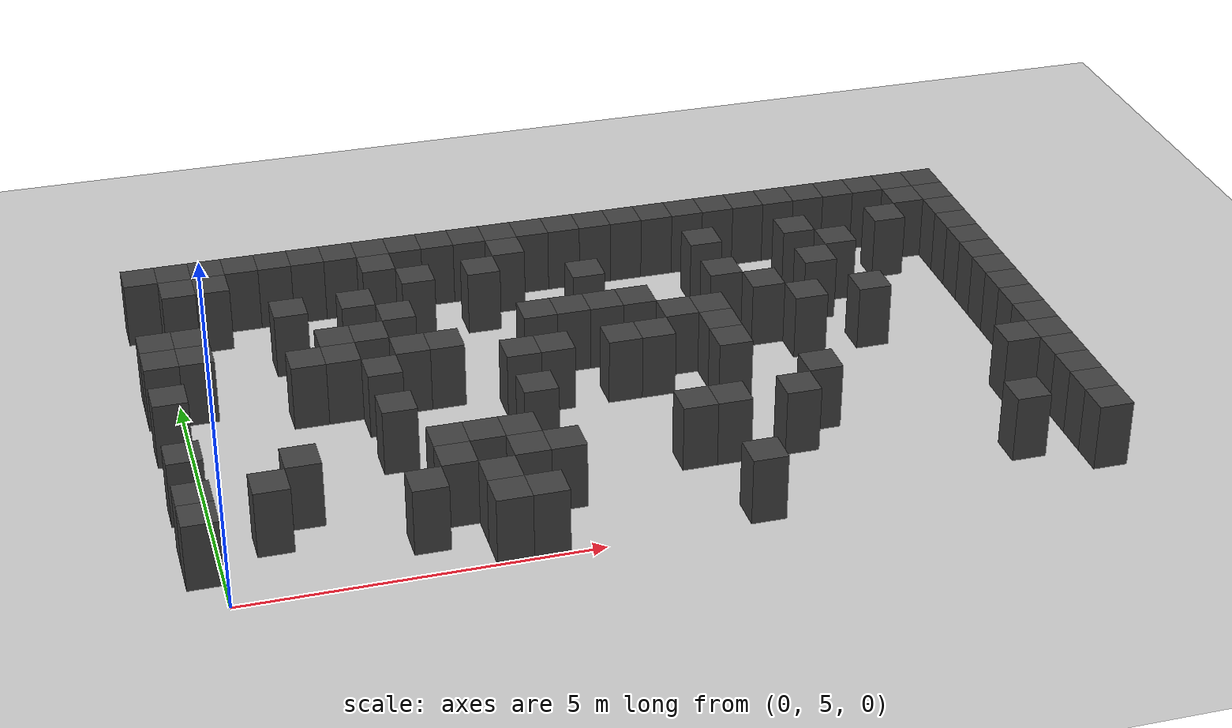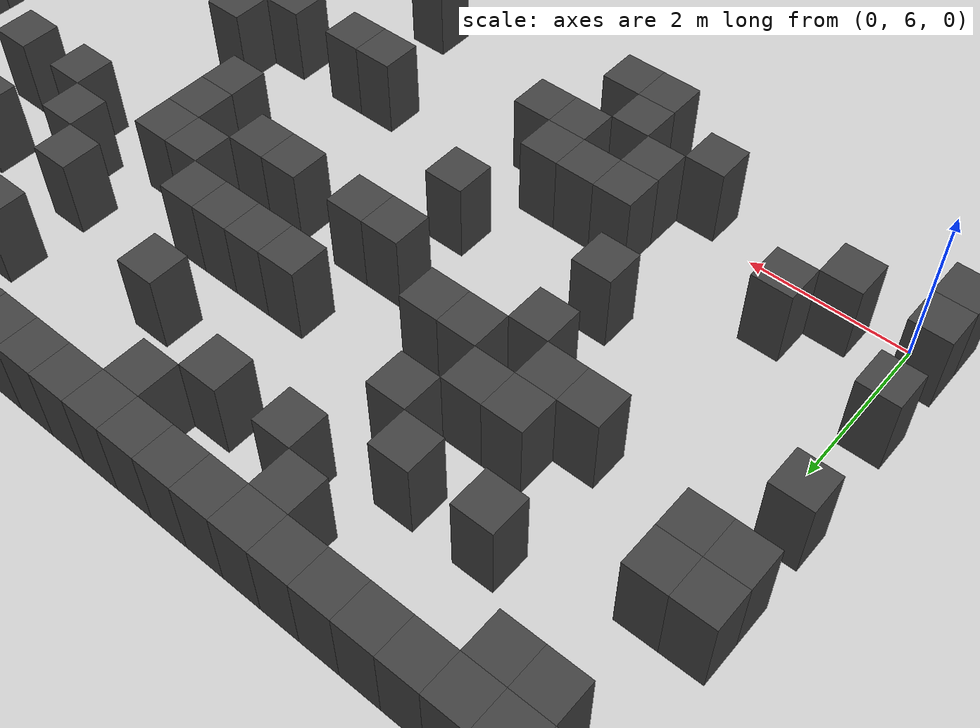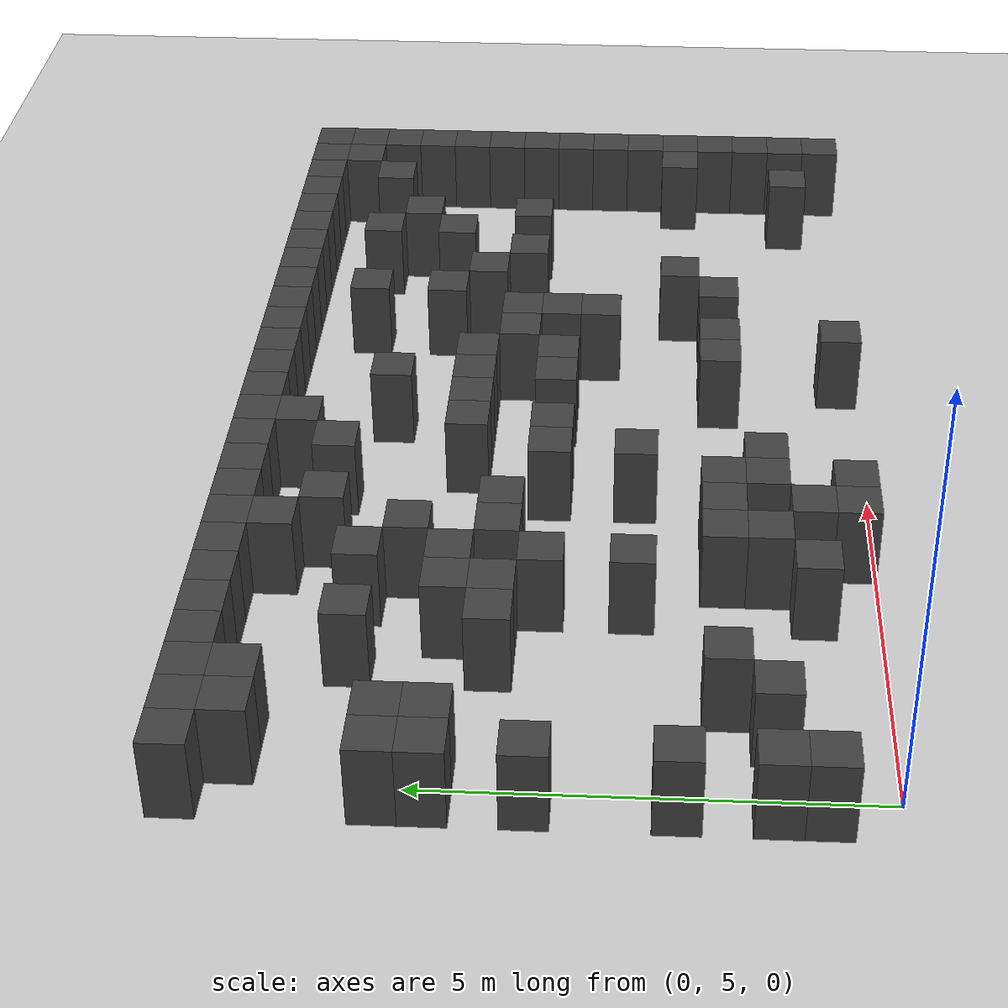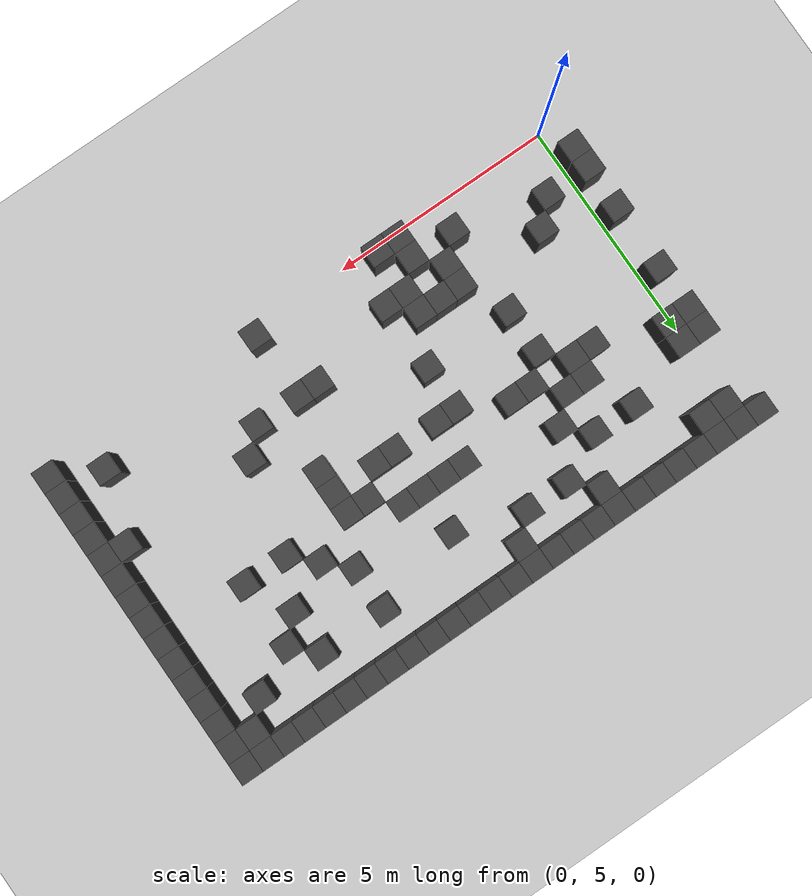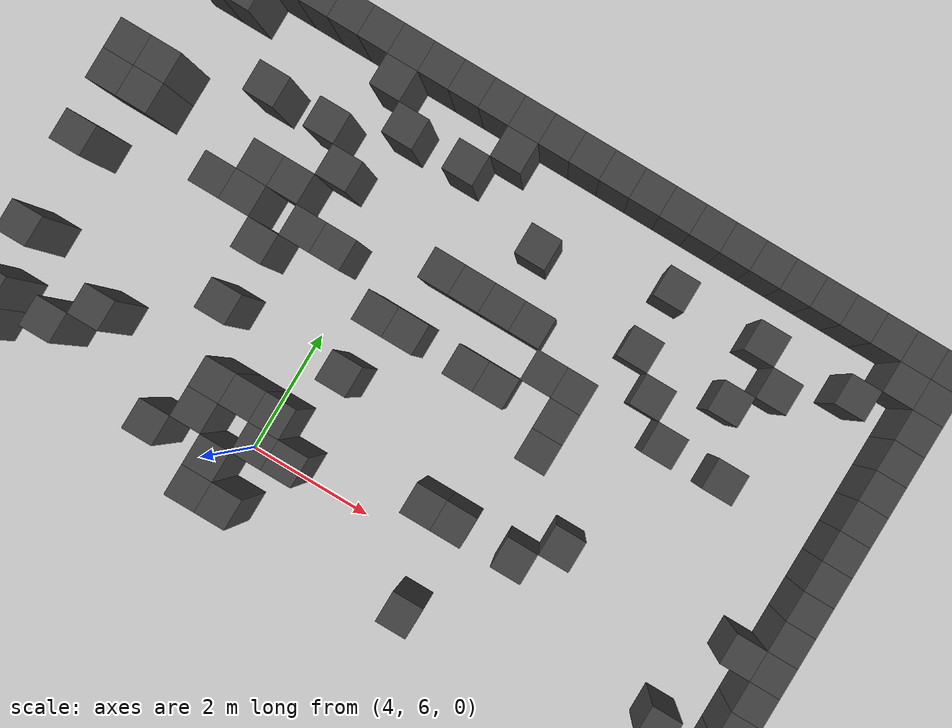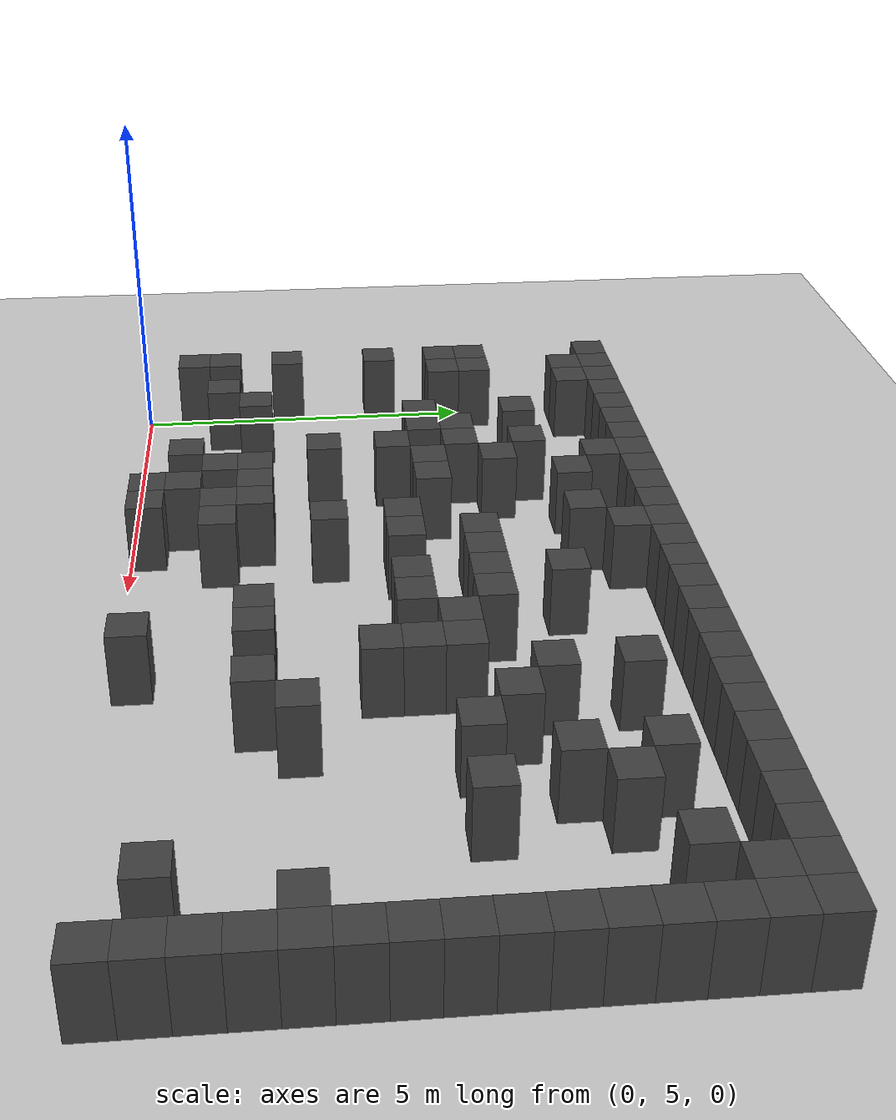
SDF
<sdf version="1.7">
 <world name="map_3955">
  <model name="ground_plane">
   <static>true</static>
   <link name="link">
    <collision name="collision">
     <geometry><plane><normal>0 0 1</normal><size>200 200</size></plane></geometry>
    </collision>
    <visual name="visual">
     <geometry><plane><normal>0 0 1</normal><size>200 200</size></plane></geometry>
     <material><ambient>0.8 0.8 0.8 1</ambient><diffuse>0.8 0.8 0.8 1</diffuse></material>
    </visual>
   </link>
  </model>
  <model name="maze_environment">
   <static>true</static>
   <link name="wall_24">
    <pose>-0.250 12.250 0.500 0 0 0</pose>
    <collision name="col"><geometry><box><size>0.5 0.5 1.0</size></box></geometry></collision>
    <visual name="vis">
     <geometry><box><size>0.5 0.5 1.0</size></box></geometry>
     <material><ambient>0.15 0.15 0.15 1</ambient><diffuse>0.25 0.25 0.25 1</diffuse></material>
    </visual>
   </link>
   <link name="wall_25">
    <pose>0.250 12.250 0.500 0 0 0</pose>
    <collision name="col"><geometry><box><size>0.5 0.5 1.0</size></box></geometry></collision>
    <visual name="vis">
     <geometry><box><size>0.5 0.5 1.0</size></box></geometry>
     <material><ambient>0.15 0.15 0.15 1</ambient><diffuse>0.25 0.25 0.25 1</diffuse></material>
    </visual>
   </link>
   <link name="wall_26">
    <pose>0.750 12.250 0.500 0 0 0</pose>
    <collision name="col"><geometry><box><size>0.5 0.5 1.0</size></box></geometry></collision>
    <visual name="vis">
     <geometry><box><size>0.5 0.5 1.0</size></box></geometry>
     <material><ambient>0.15 0.15 0.15 1</ambient><diffuse>0.25 0.25 0.25 1</diffuse></material>
    </visual>
   </link>
   <link name="wall_27">
    <pose>1.250 12.250 0.500 0 0 0</pose>
    <collision name="col"><geometry><box><size>0.5 0.5 1.0</size></box></geometry></collision>
    <visual name="vis">
     <geometry><box><size>0.5 0.5 1.0</size></box></geometry>
     <material><ambient>0.15 0.15 0.15 1</ambient><diffuse>0.25 0.25 0.25 1</diffuse></material>
    </visual>
   </link>
   <link name="wall_28">
    <pose>1.750 12.250 0.500 0 0 0</pose>
    <collision name="col"><geometry><box><size>0.5 0.5 1.0</size></box></geometry></collision>
    <visual name="vis">
     <geometry><box><size>0.5 0.5 1.0</size></box></geometry>
     <material><ambient>0.15 0.15 0.15 1</ambient><diffuse>0.25 0.25 0.25 1</diffuse></material>
    </visual>
   </link>
   <link name="wall_29">
    <pose>2.250 12.250 0.500 0 0 0</pose>
    <collision name="col"><geometry><box><size>0.5 0.5 1.0</size></box></geometry></collision>
    <visual name="vis">
     <geometry><box><size>0.5 0.5 1.0</size></box></geometry>
     <material><ambient>0.15 0.15 0.15 1</ambient><diffuse>0.25 0.25 0.25 1</diffuse></material>
    </visual>
   </link>
   <link name="wall_30">
    <pose>2.750 12.250 0.500 0 0 0</pose>
    <collision name="col"><geometry><box><size>0.5 0.5 1.0</size></box></geometry></collision>
    <visual name="vis">
     <geometry><box><size>0.5 0.5 1.0</size></box></geometry>
     <material><ambient>0.15 0.15 0.15 1</ambient><diffuse>0.25 0.25 0.25 1</diffuse></material>
    </visual>
   </link>
   <link name="wall_31">
    <pose>3.250 12.250 0.500 0 0 0</pose>
    <collision name="col"><geometry><box><size>0.5 0.5 1.0</size></box></geometry></collision>
    <visual name="vis">
     <geometry><box><size>0.5 0.5 1.0</size></box></geometry>
     <material><ambient>0.15 0.15 0.15 1</ambient><diffuse>0.25 0.25 0.25 1</diffuse></material>
    </visual>
   </link>
   <link name="wall_32">
    <pose>3.750 12.250 0.500 0 0 0</pose>
    <collision name="col"><geometry><box><size>0.5 0.5 1.0</size></box></geometry></collision>
    <visual name="vis">
     <geometry><box><size>0.5 0.5 1.0</size></box></geometry>
     <material><ambient>0.15 0.15 0.15 1</ambient><diffuse>0.25 0.25 0.25 1</diffuse></material>
    </visual>
   </link>
   <link name="wall_33">
    <pose>4.250 12.250 0.500 0 0 0</pose>
    <collision name="col"><geometry><box><size>0.5 0.5 1.0</size></box></geometry></collision>
    <visual name="vis">
     <geometry><box><size>0.5 0.5 1.0</size></box></geometry>
     <material><ambient>0.15 0.15 0.15 1</ambient><diffuse>0.25 0.25 0.25 1</diffuse></material>
    </visual>
   </link>
   <link name="wall_34">
    <pose>4.750 12.250 0.500 0 0 0</pose>
    <collision name="col"><geometry><box><size>0.5 0.5 1.0</size></box></geometry></collision>
    <visual name="vis">
     <geometry><box><size>0.5 0.5 1.0</size></box></geometry>
     <material><ambient>0.15 0.15 0.15 1</ambient><diffuse>0.25 0.25 0.25 1</diffuse></material>
    </visual>
   </link>
   <link name="wall_35">
    <pose>5.250 12.250 0.500 0 0 0</pose>
    <collision name="col"><geometry><box><size>0.5 0.5 1.0</size></box></geometry></collision>
    <visual name="vis">
     <geometry><box><size>0.5 0.5 1.0</size></box></geometry>
     <material><ambient>0.15 0.15 0.15 1</ambient><diffuse>0.25 0.25 0.25 1</diffuse></material>
    </visual>
   </link>
   <link name="wall_36">
    <pose>5.750 12.250 0.500 0 0 0</pose>
    <collision name="col"><geometry><box><size>0.5 0.5 1.0</size></box></geometry></collision>
    <visual name="vis">
     <geometry><box><size>0.5 0.5 1.0</size></box></geometry>
     <material><ambient>0.15 0.15 0.15 1</ambient><diffuse>0.25 0.25 0.25 1</diffuse></material>
    </visual>
   </link>
   <link name="wall_37">
    <pose>6.250 12.250 0.500 0 0 0</pose>
    <collision name="col"><geometry><box><size>0.5 0.5 1.0</size></box></geometry></collision>
    <visual name="vis">
     <geometry><box><size>0.5 0.5 1.0</size></box></geometry>
     <material><ambient>0.15 0.15 0.15 1</ambient><diffuse>0.25 0.25 0.25 1</diffuse></material>
    </visual>
   </link>
   <link name="wall_38">
    <pose>6.750 12.250 0.500 0 0 0</pose>
    <collision name="col"><geometry><box><size>0.5 0.5 1.0</size></box></geometry></collision>
    <visual name="vis">
     <geometry><box><size>0.5 0.5 1.0</size></box></geometry>
     <material><ambient>0.15 0.15 0.15 1</ambient><diffuse>0.25 0.25 0.25 1</diffuse></material>
    </visual>
   </link>
   <link name="wall_39">
    <pose>7.250 12.250 0.500 0 0 0</pose>
    <collision name="col"><geometry><box><size>0.5 0.5 1.0</size></box></geometry></collision>
    <visual name="vis">
     <geometry><box><size>0.5 0.5 1.0</size></box></geometry>
     <material><ambient>0.15 0.15 0.15 1</ambient><diffuse>0.25 0.25 0.25 1</diffuse></material>
    </visual>
   </link>
   <link name="wall_40">
    <pose>7.750 12.250 0.500 0 0 0</pose>
    <collision name="col"><geometry><box><size>0.5 0.5 1.0</size></box></geometry></collision>
    <visual name="vis">
     <geometry><box><size>0.5 0.5 1.0</size></box></geometry>
     <material><ambient>0.15 0.15 0.15 1</ambient><diffuse>0.25 0.25 0.25 1</diffuse></material>
    </visual>
   </link>
   <link name="wall_41">
    <pose>8.250 12.250 0.500 0 0 0</pose>
    <collision name="col"><geometry><box><size>0.5 0.5 1.0</size></box></geometry></collision>
    <visual name="vis">
     <geometry><box><size>0.5 0.5 1.0</size></box></geometry>
     <material><ambient>0.15 0.15 0.15 1</ambient><diffuse>0.25 0.25 0.25 1</diffuse></material>
    </visual>
   </link>
   <link name="wall_42">
    <pose>8.750 12.250 0.500 0 0 0</pose>
    <collision name="col"><geometry><box><size>0.5 0.5 1.0</size></box></geometry></collision>
    <visual name="vis">
     <geometry><box><size>0.5 0.5 1.0</size></box></geometry>
     <material><ambient>0.15 0.15 0.15 1</ambient><diffuse>0.25 0.25 0.25 1</diffuse></material>
    </visual>
   </link>
   <link name="wall_43">
    <pose>9.250 12.250 0.500 0 0 0</pose>
    <collision name="col"><geometry><box><size>0.5 0.5 1.0</size></box></geometry></collision>
    <visual name="vis">
     <geometry><box><size>0.5 0.5 1.0</size></box></geometry>
     <material><ambient>0.15 0.15 0.15 1</ambient><diffuse>0.25 0.25 0.25 1</diffuse></material>
    </visual>
   </link>
   <link name="wall_44">
    <pose>9.750 12.250 0.500 0 0 0</pose>
    <collision name="col"><geometry><box><size>0.5 0.5 1.0</size></box></geometry></collision>
    <visual name="vis">
     <geometry><box><size>0.5 0.5 1.0</size></box></geometry>
     <material><ambient>0.15 0.15 0.15 1</ambient><diffuse>0.25 0.25 0.25 1</diffuse></material>
    </visual>
   </link>
   <link name="wall_45">
    <pose>10.250 12.250 0.500 0 0 0</pose>
    <collision name="col"><geometry><box><size>0.5 0.5 1.0</size></box></geometry></collision>
    <visual name="vis">
     <geometry><box><size>0.5 0.5 1.0</size></box></geometry>
     <material><ambient>0.15 0.15 0.15 1</ambient><diffuse>0.25 0.25 0.25 1</diffuse></material>
    </visual>
   </link>
   <link name="wall_46">
    <pose>10.750 12.250 0.500 0 0 0</pose>
    <collision name="col"><geometry><box><size>0.5 0.5 1.0</size></box></geometry></collision>
    <visual name="vis">
     <geometry><box><size>0.5 0.5 1.0</size></box></geometry>
     <material><ambient>0.15 0.15 0.15 1</ambient><diffuse>0.25 0.25 0.25 1</diffuse></material>
    </visual>
   </link>
   <link name="wall_47">
    <pose>11.250 12.250 0.500 0 0 0</pose>
    <collision name="col"><geometry><box><size>0.5 0.5 1.0</size></box></geometry></collision>
    <visual name="vis">
     <geometry><box><size>0.5 0.5 1.0</size></box></geometry>
     <material><ambient>0.15 0.15 0.15 1</ambient><diffuse>0.25 0.25 0.25 1</diffuse></material>
    </visual>
   </link>
   <link name="wall_48">
    <pose>11.750 12.250 0.500 0 0 0</pose>
    <collision name="col"><geometry><box><size>0.5 0.5 1.0</size></box></geometry></collision>
    <visual name="vis">
     <geometry><box><size>0.5 0.5 1.0</size></box></geometry>
     <material><ambient>0.15 0.15 0.15 1</ambient><diffuse>0.25 0.25 0.25 1</diffuse></material>
    </visual>
   </link>
   <link name="wall_49">
    <pose>12.250 12.250 0.500 0 0 0</pose>
    <collision name="col"><geometry><box><size>0.5 0.5 1.0</size></box></geometry></collision>
    <visual name="vis">
     <geometry><box><size>0.5 0.5 1.0</size></box></geometry>
     <material><ambient>0.15 0.15 0.15 1</ambient><diffuse>0.25 0.25 0.25 1</diffuse></material>
    </visual>
   </link>
   <link name="wall_52">
    <pose>0.250 11.750 0.500 0 0 0</pose>
    <collision name="col"><geometry><box><size>0.5 0.5 1.0</size></box></geometry></collision>
    <visual name="vis">
     <geometry><box><size>0.5 0.5 1.0</size></box></geometry>
     <material><ambient>0.15 0.15 0.15 1</ambient><diffuse>0.25 0.25 0.25 1</diffuse></material>
    </visual>
   </link>
   <link name="wall_53">
    <pose>0.750 11.750 0.500 0 0 0</pose>
    <collision name="col"><geometry><box><size>0.5 0.5 1.0</size></box></geometry></collision>
    <visual name="vis">
     <geometry><box><size>0.5 0.5 1.0</size></box></geometry>
     <material><ambient>0.15 0.15 0.15 1</ambient><diffuse>0.25 0.25 0.25 1</diffuse></material>
    </visual>
   </link>
   <link name="wall_54">
    <pose>3.250 11.750 0.500 0 0 0</pose>
    <collision name="col"><geometry><box><size>0.5 0.5 1.0</size></box></geometry></collision>
    <visual name="vis">
     <geometry><box><size>0.5 0.5 1.0</size></box></geometry>
     <material><ambient>0.15 0.15 0.15 1</ambient><diffuse>0.25 0.25 0.25 1</diffuse></material>
    </visual>
   </link>
   <link name="wall_55">
    <pose>5.250 11.750 0.500 0 0 0</pose>
    <collision name="col"><geometry><box><size>0.5 0.5 1.0</size></box></geometry></collision>
    <visual name="vis">
     <geometry><box><size>0.5 0.5 1.0</size></box></geometry>
     <material><ambient>0.15 0.15 0.15 1</ambient><diffuse>0.25 0.25 0.25 1</diffuse></material>
    </visual>
   </link>
   <link name="wall_56">
    <pose>11.750 11.750 0.500 0 0 0</pose>
    <collision name="col"><geometry><box><size>0.5 0.5 1.0</size></box></geometry></collision>
    <visual name="vis">
     <geometry><box><size>0.5 0.5 1.0</size></box></geometry>
     <material><ambient>0.15 0.15 0.15 1</ambient><diffuse>0.25 0.25 0.25 1</diffuse></material>
    </visual>
   </link>
   <link name="wall_57">
    <pose>12.250 11.750 0.500 0 0 0</pose>
    <collision name="col"><geometry><box><size>0.5 0.5 1.0</size></box></geometry></collision>
    <visual name="vis">
     <geometry><box><size>0.5 0.5 1.0</size></box></geometry>
     <material><ambient>0.15 0.15 0.15 1</ambient><diffuse>0.25 0.25 0.25 1</diffuse></material>
    </visual>
   </link>
   <link name="wall_63">
    <pose>3.750 11.250 0.500 0 0 0</pose>
    <collision name="col"><geometry><box><size>0.5 0.5 1.0</size></box></geometry></collision>
    <visual name="vis">
     <geometry><box><size>0.5 0.5 1.0</size></box></geometry>
     <material><ambient>0.15 0.15 0.15 1</ambient><diffuse>0.25 0.25 0.25 1</diffuse></material>
    </visual>
   </link>
   <link name="wall_64">
    <pose>4.750 11.250 0.500 0 0 0</pose>
    <collision name="col"><geometry><box><size>0.5 0.5 1.0</size></box></geometry></collision>
    <visual name="vis">
     <geometry><box><size>0.5 0.5 1.0</size></box></geometry>
     <material><ambient>0.15 0.15 0.15 1</ambient><diffuse>0.25 0.25 0.25 1</diffuse></material>
    </visual>
   </link>
   <link name="wall_65">
    <pose>8.250 11.250 0.500 0 0 0</pose>
    <collision name="col"><geometry><box><size>0.5 0.5 1.0</size></box></geometry></collision>
    <visual name="vis">
     <geometry><box><size>0.5 0.5 1.0</size></box></geometry>
     <material><ambient>0.15 0.15 0.15 1</ambient><diffuse>0.25 0.25 0.25 1</diffuse></material>
    </visual>
   </link>
   <link name="wall_66">
    <pose>9.750 11.250 0.500 0 0 0</pose>
    <collision name="col"><geometry><box><size>0.5 0.5 1.0</size></box></geometry></collision>
    <visual name="vis">
     <geometry><box><size>0.5 0.5 1.0</size></box></geometry>
     <material><ambient>0.15 0.15 0.15 1</ambient><diffuse>0.25 0.25 0.25 1</diffuse></material>
    </visual>
   </link>
   <link name="wall_67">
    <pose>11.250 11.250 0.500 0 0 0</pose>
    <collision name="col"><geometry><box><size>0.5 0.5 1.0</size></box></geometry></collision>
    <visual name="vis">
     <geometry><box><size>0.5 0.5 1.0</size></box></geometry>
     <material><ambient>0.15 0.15 0.15 1</ambient><diffuse>0.25 0.25 0.25 1</diffuse></material>
    </visual>
   </link>
   <link name="wall_68">
    <pose>12.250 11.250 0.500 0 0 0</pose>
    <collision name="col"><geometry><box><size>0.5 0.5 1.0</size></box></geometry></collision>
    <visual name="vis">
     <geometry><box><size>0.5 0.5 1.0</size></box></geometry>
     <material><ambient>0.15 0.15 0.15 1</ambient><diffuse>0.25 0.25 0.25 1</diffuse></material>
    </visual>
   </link>
   <link name="wall_72">
    <pose>1.750 10.750 0.500 0 0 0</pose>
    <collision name="col"><geometry><box><size>0.5 0.5 1.0</size></box></geometry></collision>
    <visual name="vis">
     <geometry><box><size>0.5 0.5 1.0</size></box></geometry>
     <material><ambient>0.15 0.15 0.15 1</ambient><diffuse>0.25 0.25 0.25 1</diffuse></material>
    </visual>
   </link>
   <link name="wall_73">
    <pose>2.750 10.750 0.500 0 0 0</pose>
    <collision name="col"><geometry><box><size>0.5 0.5 1.0</size></box></geometry></collision>
    <visual name="vis">
     <geometry><box><size>0.5 0.5 1.0</size></box></geometry>
     <material><ambient>0.15 0.15 0.15 1</ambient><diffuse>0.25 0.25 0.25 1</diffuse></material>
    </visual>
   </link>
   <link name="wall_74">
    <pose>6.250 10.750 0.500 0 0 0</pose>
    <collision name="col"><geometry><box><size>0.5 0.5 1.0</size></box></geometry></collision>
    <visual name="vis">
     <geometry><box><size>0.5 0.5 1.0</size></box></geometry>
     <material><ambient>0.15 0.15 0.15 1</ambient><diffuse>0.25 0.25 0.25 1</diffuse></material>
    </visual>
   </link>
   <link name="wall_75">
    <pose>10.250 10.750 0.500 0 0 0</pose>
    <collision name="col"><geometry><box><size>0.5 0.5 1.0</size></box></geometry></collision>
    <visual name="vis">
     <geometry><box><size>0.5 0.5 1.0</size></box></geometry>
     <material><ambient>0.15 0.15 0.15 1</ambient><diffuse>0.25 0.25 0.25 1</diffuse></material>
    </visual>
   </link>
   <link name="wall_76">
    <pose>12.250 10.750 0.500 0 0 0</pose>
    <collision name="col"><geometry><box><size>0.5 0.5 1.0</size></box></geometry></collision>
    <visual name="vis">
     <geometry><box><size>0.5 0.5 1.0</size></box></geometry>
     <material><ambient>0.15 0.15 0.15 1</ambient><diffuse>0.25 0.25 0.25 1</diffuse></material>
    </visual>
   </link>
   <link name="wall_81">
    <pose>-0.250 10.250 0.500 0 0 0</pose>
    <collision name="col"><geometry><box><size>0.5 0.5 1.0</size></box></geometry></collision>
    <visual name="vis">
     <geometry><box><size>0.5 0.5 1.0</size></box></geometry>
     <material><ambient>0.15 0.15 0.15 1</ambient><diffuse>0.25 0.25 0.25 1</diffuse></material>
    </visual>
   </link>
   <link name="wall_82">
    <pose>0.250 10.250 0.500 0 0 0</pose>
    <collision name="col"><geometry><box><size>0.5 0.5 1.0</size></box></geometry></collision>
    <visual name="vis">
     <geometry><box><size>0.5 0.5 1.0</size></box></geometry>
     <material><ambient>0.15 0.15 0.15 1</ambient><diffuse>0.25 0.25 0.25 1</diffuse></material>
    </visual>
   </link>
   <link name="wall_83">
    <pose>3.250 10.250 0.500 0 0 0</pose>
    <collision name="col"><geometry><box><size>0.5 0.5 1.0</size></box></geometry></collision>
    <visual name="vis">
     <geometry><box><size>0.5 0.5 1.0</size></box></geometry>
     <material><ambient>0.15 0.15 0.15 1</ambient><diffuse>0.25 0.25 0.25 1</diffuse></material>
    </visual>
   </link>
   <link name="wall_84">
    <pose>8.250 10.250 0.500 0 0 0</pose>
    <collision name="col"><geometry><box><size>0.5 0.5 1.0</size></box></geometry></collision>
    <visual name="vis">
     <geometry><box><size>0.5 0.5 1.0</size></box></geometry>
     <material><ambient>0.15 0.15 0.15 1</ambient><diffuse>0.25 0.25 0.25 1</diffuse></material>
    </visual>
   </link>
   <link name="wall_85">
    <pose>9.750 10.250 0.500 0 0 0</pose>
    <collision name="col"><geometry><box><size>0.5 0.5 1.0</size></box></geometry></collision>
    <visual name="vis">
     <geometry><box><size>0.5 0.5 1.0</size></box></geometry>
     <material><ambient>0.15 0.15 0.15 1</ambient><diffuse>0.25 0.25 0.25 1</diffuse></material>
    </visual>
   </link>
   <link name="wall_86">
    <pose>12.250 10.250 0.500 0 0 0</pose>
    <collision name="col"><geometry><box><size>0.5 0.5 1.0</size></box></geometry></collision>
    <visual name="vis">
     <geometry><box><size>0.5 0.5 1.0</size></box></geometry>
     <material><ambient>0.15 0.15 0.15 1</ambient><diffuse>0.25 0.25 0.25 1</diffuse></material>
    </visual>
   </link>
   <link name="wall_89">
    <pose>-0.250 9.750 0.500 0 0 0</pose>
    <collision name="col"><geometry><box><size>0.5 0.5 1.0</size></box></geometry></collision>
    <visual name="vis">
     <geometry><box><size>0.5 0.5 1.0</size></box></geometry>
     <material><ambient>0.15 0.15 0.15 1</ambient><diffuse>0.25 0.25 0.25 1</diffuse></material>
    </visual>
   </link>
   <link name="wall_90">
    <pose>0.250 9.750 0.500 0 0 0</pose>
    <collision name="col"><geometry><box><size>0.5 0.5 1.0</size></box></geometry></collision>
    <visual name="vis">
     <geometry><box><size>0.5 0.5 1.0</size></box></geometry>
     <material><ambient>0.15 0.15 0.15 1</ambient><diffuse>0.25 0.25 0.25 1</diffuse></material>
    </visual>
   </link>
   <link name="wall_91">
    <pose>2.250 9.750 0.500 0 0 0</pose>
    <collision name="col"><geometry><box><size>0.5 0.5 1.0</size></box></geometry></collision>
    <visual name="vis">
     <geometry><box><size>0.5 0.5 1.0</size></box></geometry>
     <material><ambient>0.15 0.15 0.15 1</ambient><diffuse>0.25 0.25 0.25 1</diffuse></material>
    </visual>
   </link>
   <link name="wall_92">
    <pose>2.750 9.750 0.500 0 0 0</pose>
    <collision name="col"><geometry><box><size>0.5 0.5 1.0</size></box></geometry></collision>
    <visual name="vis">
     <geometry><box><size>0.5 0.5 1.0</size></box></geometry>
     <material><ambient>0.15 0.15 0.15 1</ambient><diffuse>0.25 0.25 0.25 1</diffuse></material>
    </visual>
   </link>
   <link name="wall_93">
    <pose>5.250 9.750 0.500 0 0 0</pose>
    <collision name="col"><geometry><box><size>0.5 0.5 1.0</size></box></geometry></collision>
    <visual name="vis">
     <geometry><box><size>0.5 0.5 1.0</size></box></geometry>
     <material><ambient>0.15 0.15 0.15 1</ambient><diffuse>0.25 0.25 0.25 1</diffuse></material>
    </visual>
   </link>
   <link name="wall_94">
    <pose>5.750 9.750 0.500 0 0 0</pose>
    <collision name="col"><geometry><box><size>0.5 0.5 1.0</size></box></geometry></collision>
    <visual name="vis">
     <geometry><box><size>0.5 0.5 1.0</size></box></geometry>
     <material><ambient>0.15 0.15 0.15 1</ambient><diffuse>0.25 0.25 0.25 1</diffuse></material>
    </visual>
   </link>
   <link name="wall_95">
    <pose>6.250 9.750 0.500 0 0 0</pose>
    <collision name="col"><geometry><box><size>0.5 0.5 1.0</size></box></geometry></collision>
    <visual name="vis">
     <geometry><box><size>0.5 0.5 1.0</size></box></geometry>
     <material><ambient>0.15 0.15 0.15 1</ambient><diffuse>0.25 0.25 0.25 1</diffuse></material>
    </visual>
   </link>
   <link name="wall_96">
    <pose>6.750 9.750 0.500 0 0 0</pose>
    <collision name="col"><geometry><box><size>0.5 0.5 1.0</size></box></geometry></collision>
    <visual name="vis">
     <geometry><box><size>0.5 0.5 1.0</size></box></geometry>
     <material><ambient>0.15 0.15 0.15 1</ambient><diffuse>0.25 0.25 0.25 1</diffuse></material>
    </visual>
   </link>
   <link name="wall_97">
    <pose>8.750 9.750 0.500 0 0 0</pose>
    <collision name="col"><geometry><box><size>0.5 0.5 1.0</size></box></geometry></collision>
    <visual name="vis">
     <geometry><box><size>0.5 0.5 1.0</size></box></geometry>
     <material><ambient>0.15 0.15 0.15 1</ambient><diffuse>0.25 0.25 0.25 1</diffuse></material>
    </visual>
   </link>
   <link name="wall_98">
    <pose>12.250 9.750 0.500 0 0 0</pose>
    <collision name="col"><geometry><box><size>0.5 0.5 1.0</size></box></geometry></collision>
    <visual name="vis">
     <geometry><box><size>0.5 0.5 1.0</size></box></geometry>
     <material><ambient>0.15 0.15 0.15 1</ambient><diffuse>0.25 0.25 0.25 1</diffuse></material>
    </visual>
   </link>
   <link name="wall_107">
    <pose>1.750 9.250 0.500 0 0 0</pose>
    <collision name="col"><geometry><box><size>0.5 0.5 1.0</size></box></geometry></collision>
    <visual name="vis">
     <geometry><box><size>0.5 0.5 1.0</size></box></geometry>
     <material><ambient>0.15 0.15 0.15 1</ambient><diffuse>0.25 0.25 0.25 1</diffuse></material>
    </visual>
   </link>
   <link name="wall_108">
    <pose>2.250 9.250 0.500 0 0 0</pose>
    <collision name="col"><geometry><box><size>0.5 0.5 1.0</size></box></geometry></collision>
    <visual name="vis">
     <geometry><box><size>0.5 0.5 1.0</size></box></geometry>
     <material><ambient>0.15 0.15 0.15 1</ambient><diffuse>0.25 0.25 0.25 1</diffuse></material>
    </visual>
   </link>
   <link name="wall_109">
    <pose>3.250 9.250 0.500 0 0 0</pose>
    <collision name="col"><geometry><box><size>0.5 0.5 1.0</size></box></geometry></collision>
    <visual name="vis">
     <geometry><box><size>0.5 0.5 1.0</size></box></geometry>
     <material><ambient>0.15 0.15 0.15 1</ambient><diffuse>0.25 0.25 0.25 1</diffuse></material>
    </visual>
   </link>
   <link name="wall_110">
    <pose>3.750 9.250 0.500 0 0 0</pose>
    <collision name="col"><geometry><box><size>0.5 0.5 1.0</size></box></geometry></collision>
    <visual name="vis">
     <geometry><box><size>0.5 0.5 1.0</size></box></geometry>
     <material><ambient>0.15 0.15 0.15 1</ambient><diffuse>0.25 0.25 0.25 1</diffuse></material>
    </visual>
   </link>
   <link name="wall_111">
    <pose>7.250 9.250 0.500 0 0 0</pose>
    <collision name="col"><geometry><box><size>0.5 0.5 1.0</size></box></geometry></collision>
    <visual name="vis">
     <geometry><box><size>0.5 0.5 1.0</size></box></geometry>
     <material><ambient>0.15 0.15 0.15 1</ambient><diffuse>0.25 0.25 0.25 1</diffuse></material>
    </visual>
   </link>
   <link name="wall_112">
    <pose>7.750 9.250 0.500 0 0 0</pose>
    <collision name="col"><geometry><box><size>0.5 0.5 1.0</size></box></geometry></collision>
    <visual name="vis">
     <geometry><box><size>0.5 0.5 1.0</size></box></geometry>
     <material><ambient>0.15 0.15 0.15 1</ambient><diffuse>0.25 0.25 0.25 1</diffuse></material>
    </visual>
   </link>
   <link name="wall_113">
    <pose>9.250 9.250 0.500 0 0 0</pose>
    <collision name="col"><geometry><box><size>0.5 0.5 1.0</size></box></geometry></collision>
    <visual name="vis">
     <geometry><box><size>0.5 0.5 1.0</size></box></geometry>
     <material><ambient>0.15 0.15 0.15 1</ambient><diffuse>0.25 0.25 0.25 1</diffuse></material>
    </visual>
   </link>
   <link name="wall_114">
    <pose>10.250 9.250 0.500 0 0 0</pose>
    <collision name="col"><geometry><box><size>0.5 0.5 1.0</size></box></geometry></collision>
    <visual name="vis">
     <geometry><box><size>0.5 0.5 1.0</size></box></geometry>
     <material><ambient>0.15 0.15 0.15 1</ambient><diffuse>0.25 0.25 0.25 1</diffuse></material>
    </visual>
   </link>
   <link name="wall_115">
    <pose>12.250 9.250 0.500 0 0 0</pose>
    <collision name="col"><geometry><box><size>0.5 0.5 1.0</size></box></geometry></collision>
    <visual name="vis">
     <geometry><box><size>0.5 0.5 1.0</size></box></geometry>
     <material><ambient>0.15 0.15 0.15 1</ambient><diffuse>0.25 0.25 0.25 1</diffuse></material>
    </visual>
   </link>
   <link name="wall_122">
    <pose>-0.250 8.750 0.500 0 0 0</pose>
    <collision name="col"><geometry><box><size>0.5 0.5 1.0</size></box></geometry></collision>
    <visual name="vis">
     <geometry><box><size>0.5 0.5 1.0</size></box></geometry>
     <material><ambient>0.15 0.15 0.15 1</ambient><diffuse>0.25 0.25 0.25 1</diffuse></material>
    </visual>
   </link>
   <link name="wall_123">
    <pose>2.750 8.750 0.500 0 0 0</pose>
    <collision name="col"><geometry><box><size>0.5 0.5 1.0</size></box></geometry></collision>
    <visual name="vis">
     <geometry><box><size>0.5 0.5 1.0</size></box></geometry>
     <material><ambient>0.15 0.15 0.15 1</ambient><diffuse>0.25 0.25 0.25 1</diffuse></material>
    </visual>
   </link>
   <link name="wall_124">
    <pose>4.750 8.750 0.500 0 0 0</pose>
    <collision name="col"><geometry><box><size>0.5 0.5 1.0</size></box></geometry></collision>
    <visual name="vis">
     <geometry><box><size>0.5 0.5 1.0</size></box></geometry>
     <material><ambient>0.15 0.15 0.15 1</ambient><diffuse>0.25 0.25 0.25 1</diffuse></material>
    </visual>
   </link>
   <link name="wall_125">
    <pose>5.250 8.750 0.500 0 0 0</pose>
    <collision name="col"><geometry><box><size>0.5 0.5 1.0</size></box></geometry></collision>
    <visual name="vis">
     <geometry><box><size>0.5 0.5 1.0</size></box></geometry>
     <material><ambient>0.15 0.15 0.15 1</ambient><diffuse>0.25 0.25 0.25 1</diffuse></material>
    </visual>
   </link>
   <link name="wall_126">
    <pose>6.250 8.750 0.500 0 0 0</pose>
    <collision name="col"><geometry><box><size>0.5 0.5 1.0</size></box></geometry></collision>
    <visual name="vis">
     <geometry><box><size>0.5 0.5 1.0</size></box></geometry>
     <material><ambient>0.15 0.15 0.15 1</ambient><diffuse>0.25 0.25 0.25 1</diffuse></material>
    </visual>
   </link>
   <link name="wall_127">
    <pose>6.750 8.750 0.500 0 0 0</pose>
    <collision name="col"><geometry><box><size>0.5 0.5 1.0</size></box></geometry></collision>
    <visual name="vis">
     <geometry><box><size>0.5 0.5 1.0</size></box></geometry>
     <material><ambient>0.15 0.15 0.15 1</ambient><diffuse>0.25 0.25 0.25 1</diffuse></material>
    </visual>
   </link>
   <link name="wall_128">
    <pose>7.750 8.750 0.500 0 0 0</pose>
    <collision name="col"><geometry><box><size>0.5 0.5 1.0</size></box></geometry></collision>
    <visual name="vis">
     <geometry><box><size>0.5 0.5 1.0</size></box></geometry>
     <material><ambient>0.15 0.15 0.15 1</ambient><diffuse>0.25 0.25 0.25 1</diffuse></material>
    </visual>
   </link>
   <link name="wall_129">
    <pose>12.250 8.750 0.500 0 0 0</pose>
    <collision name="col"><geometry><box><size>0.5 0.5 1.0</size></box></geometry></collision>
    <visual name="vis">
     <geometry><box><size>0.5 0.5 1.0</size></box></geometry>
     <material><ambient>0.15 0.15 0.15 1</ambient><diffuse>0.25 0.25 0.25 1</diffuse></material>
    </visual>
   </link>
   <link name="wall_135">
    <pose>7.750 8.250 0.500 0 0 0</pose>
    <collision name="col"><geometry><box><size>0.5 0.5 1.0</size></box></geometry></collision>
    <visual name="vis">
     <geometry><box><size>0.5 0.5 1.0</size></box></geometry>
     <material><ambient>0.15 0.15 0.15 1</ambient><diffuse>0.25 0.25 0.25 1</diffuse></material>
    </visual>
   </link>
   <link name="wall_136">
    <pose>12.250 8.250 0.500 0 0 0</pose>
    <collision name="col"><geometry><box><size>0.5 0.5 1.0</size></box></geometry></collision>
    <visual name="vis">
     <geometry><box><size>0.5 0.5 1.0</size></box></geometry>
     <material><ambient>0.15 0.15 0.15 1</ambient><diffuse>0.25 0.25 0.25 1</diffuse></material>
    </visual>
   </link>
   <link name="wall_142">
    <pose>2.750 7.750 0.500 0 0 0</pose>
    <collision name="col"><geometry><box><size>0.5 0.5 1.0</size></box></geometry></collision>
    <visual name="vis">
     <geometry><box><size>0.5 0.5 1.0</size></box></geometry>
     <material><ambient>0.15 0.15 0.15 1</ambient><diffuse>0.25 0.25 0.25 1</diffuse></material>
    </visual>
   </link>
   <link name="wall_143">
    <pose>4.750 7.750 0.500 0 0 0</pose>
    <collision name="col"><geometry><box><size>0.5 0.5 1.0</size></box></geometry></collision>
    <visual name="vis">
     <geometry><box><size>0.5 0.5 1.0</size></box></geometry>
     <material><ambient>0.15 0.15 0.15 1</ambient><diffuse>0.25 0.25 0.25 1</diffuse></material>
    </visual>
   </link>
   <link name="wall_144">
    <pose>12.250 7.750 0.500 0 0 0</pose>
    <collision name="col"><geometry><box><size>0.5 0.5 1.0</size></box></geometry></collision>
    <visual name="vis">
     <geometry><box><size>0.5 0.5 1.0</size></box></geometry>
     <material><ambient>0.15 0.15 0.15 1</ambient><diffuse>0.25 0.25 0.25 1</diffuse></material>
    </visual>
   </link>
   <link name="wall_154">
    <pose>-0.250 7.250 0.500 0 0 0</pose>
    <collision name="col"><geometry><box><size>0.5 0.5 1.0</size></box></geometry></collision>
    <visual name="vis">
     <geometry><box><size>0.5 0.5 1.0</size></box></geometry>
     <material><ambient>0.15 0.15 0.15 1</ambient><diffuse>0.25 0.25 0.25 1</diffuse></material>
    </visual>
   </link>
   <link name="wall_155">
    <pose>8.750 7.250 0.500 0 0 0</pose>
    <collision name="col"><geometry><box><size>0.5 0.5 1.0</size></box></geometry></collision>
    <visual name="vis">
     <geometry><box><size>0.5 0.5 1.0</size></box></geometry>
     <material><ambient>0.15 0.15 0.15 1</ambient><diffuse>0.25 0.25 0.25 1</diffuse></material>
    </visual>
   </link>
   <link name="wall_156">
    <pose>11.750 7.250 0.500 0 0 0</pose>
    <collision name="col"><geometry><box><size>0.5 0.5 1.0</size></box></geometry></collision>
    <visual name="vis">
     <geometry><box><size>0.5 0.5 1.0</size></box></geometry>
     <material><ambient>0.15 0.15 0.15 1</ambient><diffuse>0.25 0.25 0.25 1</diffuse></material>
    </visual>
   </link>
   <link name="wall_157">
    <pose>12.250 7.250 0.500 0 0 0</pose>
    <collision name="col"><geometry><box><size>0.5 0.5 1.0</size></box></geometry></collision>
    <visual name="vis">
     <geometry><box><size>0.5 0.5 1.0</size></box></geometry>
     <material><ambient>0.15 0.15 0.15 1</ambient><diffuse>0.25 0.25 0.25 1</diffuse></material>
    </visual>
   </link>
   <link name="wall_162">
    <pose>1.250 6.750 0.500 0 0 0</pose>
    <collision name="col"><geometry><box><size>0.5 0.5 1.0</size></box></geometry></collision>
    <visual name="vis">
     <geometry><box><size>0.5 0.5 1.0</size></box></geometry>
     <material><ambient>0.15 0.15 0.15 1</ambient><diffuse>0.25 0.25 0.25 1</diffuse></material>
    </visual>
   </link>
   <link name="wall_163">
    <pose>3.250 6.750 0.500 0 0 0</pose>
    <collision name="col"><geometry><box><size>0.5 0.5 1.0</size></box></geometry></collision>
    <visual name="vis">
     <geometry><box><size>0.5 0.5 1.0</size></box></geometry>
     <material><ambient>0.15 0.15 0.15 1</ambient><diffuse>0.25 0.25 0.25 1</diffuse></material>
    </visual>
   </link>
   <link name="wall_164">
    <pose>3.750 6.750 0.500 0 0 0</pose>
    <collision name="col"><geometry><box><size>0.5 0.5 1.0</size></box></geometry></collision>
    <visual name="vis">
     <geometry><box><size>0.5 0.5 1.0</size></box></geometry>
     <material><ambient>0.15 0.15 0.15 1</ambient><diffuse>0.25 0.25 0.25 1</diffuse></material>
    </visual>
   </link>
   <link name="wall_165">
    <pose>4.250 6.750 0.500 0 0 0</pose>
    <collision name="col"><geometry><box><size>0.5 0.5 1.0</size></box></geometry></collision>
    <visual name="vis">
     <geometry><box><size>0.5 0.5 1.0</size></box></geometry>
     <material><ambient>0.15 0.15 0.15 1</ambient><diffuse>0.25 0.25 0.25 1</diffuse></material>
    </visual>
   </link>
   <link name="wall_166">
    <pose>6.750 6.750 0.500 0 0 0</pose>
    <collision name="col"><geometry><box><size>0.5 0.5 1.0</size></box></geometry></collision>
    <visual name="vis">
     <geometry><box><size>0.5 0.5 1.0</size></box></geometry>
     <material><ambient>0.15 0.15 0.15 1</ambient><diffuse>0.25 0.25 0.25 1</diffuse></material>
    </visual>
   </link>
   <link name="wall_167">
    <pose>7.250 6.750 0.500 0 0 0</pose>
    <collision name="col"><geometry><box><size>0.5 0.5 1.0</size></box></geometry></collision>
    <visual name="vis">
     <geometry><box><size>0.5 0.5 1.0</size></box></geometry>
     <material><ambient>0.15 0.15 0.15 1</ambient><diffuse>0.25 0.25 0.25 1</diffuse></material>
    </visual>
   </link>
   <link name="wall_168">
    <pose>8.250 6.750 0.500 0 0 0</pose>
    <collision name="col"><geometry><box><size>0.5 0.5 1.0</size></box></geometry></collision>
    <visual name="vis">
     <geometry><box><size>0.5 0.5 1.0</size></box></geometry>
     <material><ambient>0.15 0.15 0.15 1</ambient><diffuse>0.25 0.25 0.25 1</diffuse></material>
    </visual>
   </link>
   <link name="wall_169">
    <pose>12.250 6.750 0.500 0 0 0</pose>
    <collision name="col"><geometry><box><size>0.5 0.5 1.0</size></box></geometry></collision>
    <visual name="vis">
     <geometry><box><size>0.5 0.5 1.0</size></box></geometry>
     <material><ambient>0.15 0.15 0.15 1</ambient><diffuse>0.25 0.25 0.25 1</diffuse></material>
    </visual>
   </link>
   <link name="wall_178">
    <pose>-0.250 6.250 0.500 0 0 0</pose>
    <collision name="col"><geometry><box><size>0.5 0.5 1.0</size></box></geometry></collision>
    <visual name="vis">
     <geometry><box><size>0.5 0.5 1.0</size></box></geometry>
     <material><ambient>0.15 0.15 0.15 1</ambient><diffuse>0.25 0.25 0.25 1</diffuse></material>
    </visual>
   </link>
   <link name="wall_179">
    <pose>0.750 6.250 0.500 0 0 0</pose>
    <collision name="col"><geometry><box><size>0.5 0.5 1.0</size></box></geometry></collision>
    <visual name="vis">
     <geometry><box><size>0.5 0.5 1.0</size></box></geometry>
     <material><ambient>0.15 0.15 0.15 1</ambient><diffuse>0.25 0.25 0.25 1</diffuse></material>
    </visual>
   </link>
   <link name="wall_180">
    <pose>3.250 6.250 0.500 0 0 0</pose>
    <collision name="col"><geometry><box><size>0.5 0.5 1.0</size></box></geometry></collision>
    <visual name="vis">
     <geometry><box><size>0.5 0.5 1.0</size></box></geometry>
     <material><ambient>0.15 0.15 0.15 1</ambient><diffuse>0.25 0.25 0.25 1</diffuse></material>
    </visual>
   </link>
   <link name="wall_181">
    <pose>4.250 6.250 0.500 0 0 0</pose>
    <collision name="col"><geometry><box><size>0.5 0.5 1.0</size></box></geometry></collision>
    <visual name="vis">
     <geometry><box><size>0.5 0.5 1.0</size></box></geometry>
     <material><ambient>0.15 0.15 0.15 1</ambient><diffuse>0.25 0.25 0.25 1</diffuse></material>
    </visual>
   </link>
   <link name="wall_182">
    <pose>4.750 6.250 0.500 0 0 0</pose>
    <collision name="col"><geometry><box><size>0.5 0.5 1.0</size></box></geometry></collision>
    <visual name="vis">
     <geometry><box><size>0.5 0.5 1.0</size></box></geometry>
     <material><ambient>0.15 0.15 0.15 1</ambient><diffuse>0.25 0.25 0.25 1</diffuse></material>
    </visual>
   </link>
   <link name="wall_183">
    <pose>12.250 6.250 0.500 0 0 0</pose>
    <collision name="col"><geometry><box><size>0.5 0.5 1.0</size></box></geometry></collision>
    <visual name="vis">
     <geometry><box><size>0.5 0.5 1.0</size></box></geometry>
     <material><ambient>0.15 0.15 0.15 1</ambient><diffuse>0.25 0.25 0.25 1</diffuse></material>
    </visual>
   </link>
   <link name="wall_194">
    <pose>-0.250 5.750 0.500 0 0 0</pose>
    <collision name="col"><geometry><box><size>0.5 0.5 1.0</size></box></geometry></collision>
    <visual name="vis">
     <geometry><box><size>0.5 0.5 1.0</size></box></geometry>
     <material><ambient>0.15 0.15 0.15 1</ambient><diffuse>0.25 0.25 0.25 1</diffuse></material>
    </visual>
   </link>
   <link name="wall_195">
    <pose>2.750 5.750 0.500 0 0 0</pose>
    <collision name="col"><geometry><box><size>0.5 0.5 1.0</size></box></geometry></collision>
    <visual name="vis">
     <geometry><box><size>0.5 0.5 1.0</size></box></geometry>
     <material><ambient>0.15 0.15 0.15 1</ambient><diffuse>0.25 0.25 0.25 1</diffuse></material>
    </visual>
   </link>
   <link name="wall_196">
    <pose>3.750 5.750 0.500 0 0 0</pose>
    <collision name="col"><geometry><box><size>0.5 0.5 1.0</size></box></geometry></collision>
    <visual name="vis">
     <geometry><box><size>0.5 0.5 1.0</size></box></geometry>
     <material><ambient>0.15 0.15 0.15 1</ambient><diffuse>0.25 0.25 0.25 1</diffuse></material>
    </visual>
   </link>
   <link name="wall_197">
    <pose>11.250 5.750 0.500 0 0 0</pose>
    <collision name="col"><geometry><box><size>0.5 0.5 1.0</size></box></geometry></collision>
    <visual name="vis">
     <geometry><box><size>0.5 0.5 1.0</size></box></geometry>
     <material><ambient>0.15 0.15 0.15 1</ambient><diffuse>0.25 0.25 0.25 1</diffuse></material>
    </visual>
   </link>
   <link name="wall_198">
    <pose>12.250 5.750 0.500 0 0 0</pose>
    <collision name="col"><geometry><box><size>0.5 0.5 1.0</size></box></geometry></collision>
    <visual name="vis">
     <geometry><box><size>0.5 0.5 1.0</size></box></geometry>
     <material><ambient>0.15 0.15 0.15 1</ambient><diffuse>0.25 0.25 0.25 1</diffuse></material>
    </visual>
   </link>
   <link name="wall_208">
    <pose>3.750 5.250 0.500 0 0 0</pose>
    <collision name="col"><geometry><box><size>0.5 0.5 1.0</size></box></geometry></collision>
    <visual name="vis">
     <geometry><box><size>0.5 0.5 1.0</size></box></geometry>
     <material><ambient>0.15 0.15 0.15 1</ambient><diffuse>0.25 0.25 0.25 1</diffuse></material>
    </visual>
   </link>
   <link name="wall_209">
    <pose>4.250 5.250 0.500 0 0 0</pose>
    <collision name="col"><geometry><box><size>0.5 0.5 1.0</size></box></geometry></collision>
    <visual name="vis">
     <geometry><box><size>0.5 0.5 1.0</size></box></geometry>
     <material><ambient>0.15 0.15 0.15 1</ambient><diffuse>0.25 0.25 0.25 1</diffuse></material>
    </visual>
   </link>
   <link name="wall_210">
    <pose>7.250 5.250 0.500 0 0 0</pose>
    <collision name="col"><geometry><box><size>0.5 0.5 1.0</size></box></geometry></collision>
    <visual name="vis">
     <geometry><box><size>0.5 0.5 1.0</size></box></geometry>
     <material><ambient>0.15 0.15 0.15 1</ambient><diffuse>0.25 0.25 0.25 1</diffuse></material>
    </visual>
   </link>
   <link name="wall_211">
    <pose>12.250 5.250 0.500 0 0 0</pose>
    <collision name="col"><geometry><box><size>0.5 0.5 1.0</size></box></geometry></collision>
    <visual name="vis">
     <geometry><box><size>0.5 0.5 1.0</size></box></geometry>
     <material><ambient>0.15 0.15 0.15 1</ambient><diffuse>0.25 0.25 0.25 1</diffuse></material>
    </visual>
   </link>
  </model>
 </world>
</sdf>
